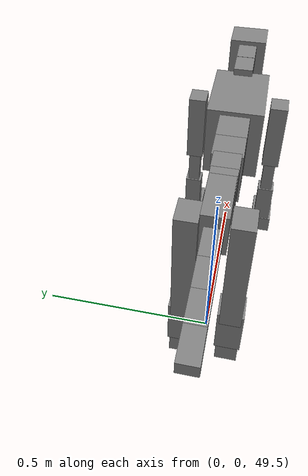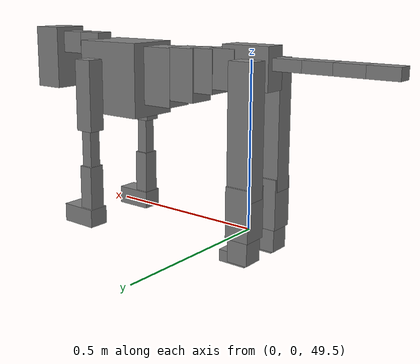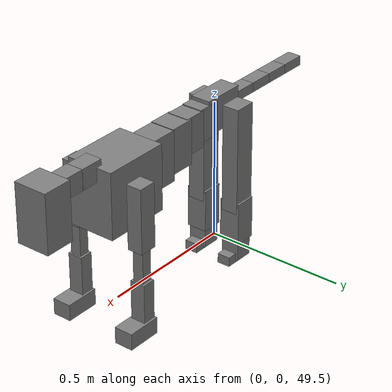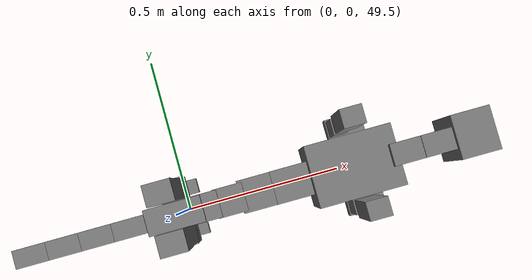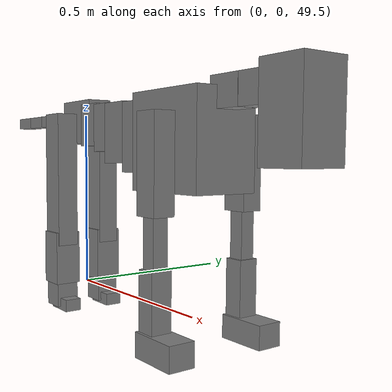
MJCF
<mujoco model="dog">

    <default>
        <joint armature="0.02" stiffness="1" damping="0.2" limited="true"/>
        <geom condim="3" friction="1 0.05 0.05" margin="0.01"/>
        <motor ctrllimited="true" ctrlrange="-1.0 1.0" forcelimited="true" gear="50"/>
    </default>

    <compiler inertiafromgeom="true" angle="radian"/>

    <option timestep="0.016" iterations="50" tolerance="1e-10" solver="Newton" jacobian="dense" cone="pyramidal"/>

    <size nconmax="20000" njmax="60000" nstack="5000000"/>
    <visual>
        <map force="0.1" zfar="30"/>
        <rgba haze="0.15 0.25 0.35 1"/>
        <quality shadowsize="2048"/>
        <global offwidth="800" offheight="800"/>
    </visual>

    <asset>
        <texture type="skybox" builtin="gradient" rgb1="0.3 0.5 0.7" rgb2="0 0 0" width="512" height="512"/>
        <texture name="texplane" type="2d" builtin="checker" rgb1=".2 .3 .4" rgb2=".1 0.15 0.2" width="512" height="512"
                 mark="cross" markrgb=".8 .8 .8"/>
        <texture name="texgeom" type="cube" builtin="flat" mark="cross" width="127" height="1278" rgb1="0.8 0.6 0.4"
                 rgb2="0.8 0.6 0.4" markrgb="1 1 1" random="0.01"/>

        <material name="matplane" reflectance="0.3" texture="texplane" texrepeat="1 1" texuniform="true"/>
        <material name="matgeom" texture="texgeom" texuniform="true" rgba="0.8 0.6 .4 1"/>
    </asset>

    <worldbody>
        <geom name="floor" pos="0 0 0" size="0 0 .25" type="plane" material="matplane" condim="3"/>

        <light directional="false" diffuse=".2 .2 .2" specular="0 0 0" pos="0 0 5" dir="0 0 -1" castshadow="false"/>
        <light mode="targetbodycom" target="torso" directional="false" diffuse=".8 .8 .8" specular="0.3 0.3 0.3"
               pos="0 0 4.0" dir="0 0 -1"/>

        <body name="root" pos="0 0 50">
            <freejoint name="root_1"/>
            <geom type="box" pos="0 0 -0.02" size="0.0774  0.0358  0.063" density="2030"/>

            <body name="spine1" pos="0.054 0 0">
                <joint name="spine1_y" axis="0 1 0" range="0 0.7" limited="true"/>
                <geom type="box" pos="0.02375 0 -0.03" size="0.04375  0.0375  0.05985" density="2030"/>

                <body name="spine2" pos="0.0612 0 0">
                    <joint name="spine2_y" axis="0 1 0" range="-0.15 0.15" limited="true"/>
                    <geom type="box" pos="0.03555  0  -0.04" size="0.04055  0.039  0.06615" density="2030"/>

                    <body name="spine3" pos="0.0730 0 0">
                        <joint name="spine3_y" axis="0 1 0" range="-0.15 0.15" limited="true"/>
                        <geom type="box" pos="0.03555  0  -0.057" size="0.04555  0.0445  0.081" density="2030"/>

                        <body name="spine4" pos="0.0780 0 0">
                            <joint name="spine4_y" axis="0 1 0" range="-0.15 0.15" limited="true"/>
                            <geom type="box" pos="0.05265  0  -0.07" size="0.05265  0.045  0.09135" density="2030"/>

                            <body name="torso" pos="0.1082 0 0">
                                <joint name="torso_y" axis="0 1 0" range="-0.15 0.15" limited="true"/>
                                <geom type="box" pos="0.11925  0  -0.085" size="0.11925  0.085  0.11745"
                                      density="2030"/>

                                <body name="neck1" pos="0.2160  0   0.0180">
                                    <joint name="neck1_y" axis="0 1 0" range="-1.2  -1" limited="true"/>
                                    <geom type="box" pos="0.0423  0  0" size="0.0423  0.03  0.036" density="2325"/>

                                    <body name="neck2" pos="0.0853  0  0">
                                        <joint name="neck2_y" axis="0 1 0" range="0.1  0" limited="true"/>
                                        <geom type="box" pos="0.0423  0  0" size="0.0423  0.03  0.036" density="2325"/>

                                        <body name="head" pos="0.0853  0  0">
                                            <joint name="head_y" axis="0 1 0" range="-0.3  -0.2" limited="true"/>
                                            <geom type="box" pos="0.0531  0  -0.055" size="0.0531  0.06  0.1044"
                                                  density="4030"/>

                                        </body>
                                    </body>
                                </body>

                                <body name="front_shoulder" pos="0.156  0   -0.0480">
                                    <joint name="front_shoulder_y" axis="0 1 0" range="-1 1.5" limited="true"/>
                                    <geom type="box" pos="0 0.13 -0.0877" size="0.0320  0.0274  0.1144" density="1158"/>
                                    <geom type="box" pos="0 -0.13 -0.0877" size="0.0320  0.0274  0.1144"
                                          density="1158"/>

                                    <body name="front_elbow" pos="0  0  -0.1755">
                                        <joint name="front_elbow_y" axis="0 1 0" range="-2 0" limited="true"/>
                                        <geom type="box" pos="0 0.13 -0.0781" size="0.0189  0.0194  0.0781"
                                              density="1081"/>
                                        <geom type="box" pos="0 -0.13 -0.0781" size="0.0189  0.0194  0.0781"
                                              density="1081"/>

                                        <body name="front_wrist" pos="0  0  -0.1562">
                                            <joint name="front_wrist_y" axis="0 1 0" range="-0.2 0" limited="true"/>
                                            <geom type="box" pos="0 0.13 -0.0709" size="0.0240  0.0267  0.0840"
                                                  density="1664"/>
                                            <geom type="box" pos="0 -0.13 -0.0709" size="0.0240  0.0267  0.0840"
                                                  density="1664"/>

                                            <body name="front_finger_end" pos="0  0  -0.1418">
                                                <joint name="front_finger_y" axis="0 1 0" range="-0.4 1"
                                                       limited="true"/>
                                                <geom type="box" pos="0.0337  0.13  -0.0145"
                                                      size="0.0618  0.0337  0.0295" density="1515"/>
                                                <geom type="box" pos="0.0337  -0.13  -0.0145"
                                                      size="0.0618  0.0337  0.0295" density="1515"/>

                                            </body>

                                        </body>
                                    </body>
                                </body>

                            </body>
                        </body>
                    </body>
                </body>
            </body>

            <body name="back_hip" pos="-0.03 0 -0.018">
                <joint name="back_hip_y" axis="0 1 0" range="-1.5 0.3" limited="true"/>
                <geom type="box" pos="0 0.07 -0.1719" size="0.0396  0.0311  0.1947" density="1154"/>
                <geom type="box" pos="0 -0.07 -0.1719" size="0.0396  0.0311  0.1947" density="1154"/>

                <body name="back_knee" pos="0  0  -0.3439">
                    <joint name="back_knee_y" axis="0 1 0" range="0 2.8" limited="true"/>
                    <geom type="box" pos="0 0.07 -0.0613" size="0.0383  0.0378  0.0768" density="1227"/>
                    <geom type="box" pos="0 -0.07 -0.0613" size="0.0383  0.0378  0.0768" density="1227"/>

                    <body name="back_ankle" pos="0  0  -0.1225">
                        <joint name="back_ankle_y" axis="0 1 0" range="-2.2 0" limited="true"/>
                        <geom type="box" pos="0 0.07 -0.0369" size="0.0329  0.0329  0.0481" density="1284"/>
                        <geom type="box" pos="0 -0.07 -0.0369" size="0.0329  0.0329  0.0481" density="1284"/>

                        <body name="back_toe_end" pos="0  0  -0.0737">
                            <joint name="back_toe_y" axis="0 1 0" range="-0.4 1" limited="true"/>
                            <geom type="box" pos="0.0241  0.07  -0.0025" size="0.0442  0.0241  0.0175" density="1515"/>
                            <geom type="box" pos="0.0241  -0.07  -0.0025" size="0.0442  0.0241  0.0175" density="1515"/>

                        </body>
                    </body>
                </body>
            </body>

            <body name="tail1" pos="-0.074 0 -0.006">
                <joint name="tail1_y" axis="0 1 0" range="-0.2 0.2" limited="true"/>
                <geom type="box" pos="-0.0536  0  0" size="0.045  0.025  0.0175" density="1587"/>

                <body name="tail2" pos="-0.09 0 0">
                    <joint name="tail2_y" axis="0 1 0" range="-0.2 0.2" limited="true"/>
                    <geom type="box" pos="-0.0536  0  0" size="0.045  0.025  0.0175" density="1587"/>

                    <body name="tail3" pos="-0.09 0 0">
                        <joint name="tail3_y" axis="0 1 0" range="-0.2 0.2" limited="true"/>
                        <geom type="box" pos="-0.0536  0  0" size="0.045  0.025  0.0175" density="1587"/>

                        <body name="tail4" pos="-0.09 0 0">
                            <joint name="tail4_y" axis="0 1 0" range="-0.2 0.2" limited="true"/>
                            <geom type="box" pos="-0.0536  0  0" size="0.045  0.025  0.0175" density="1587"/>

                        </body>
                    </body>
                </body>
            </body>
        </body>
    </worldbody>

    <actuator>
        <motor joint="spine1_y" forcerange="-150 150     "/>
        <motor joint="spine2_y" forcerange="-150 150     "/>
        <motor joint="spine3_y" forcerange="-150 150     "/>
        <motor joint="spine4_y" forcerange="-150 150     "/>
        <motor joint="torso_y" forcerange="-150 150     "/>
        <motor joint="neck1_y" forcerange="-100 100       "/>
        <motor joint="neck2_y" forcerange="-100 100       "/>
        <motor joint="head_y" forcerange="-150 150       "/>
        <motor joint="front_shoulder_y" forcerange="-135.26 147.24"/>
        <motor joint="front_elbow_y" forcerange="-113.13 127.70"/>
        <motor joint="front_wrist_y" forcerange="-115.64 97.69"/>
        <motor joint="front_finger_y" forcerange="-76.18 63.65"/>
        <motor joint="back_hip_y" forcerange="-302.14 312.28"/>
        <motor joint="back_knee_y" forcerange="-387.91 361.31"/>
        <motor joint="back_angle_y" forcerange="-207.40 218.94"/>
        <motor joint="back_toe_y" forcerange="-29.85 83.18"/>
        <motor joint="tail1_y" forcerange="-50 50     "/>
        <motor joint="tail2_y" forcerange="-50 50     "/>
        <motor joint="tail3_y" forcerange="-50 50     "/>
        <motor joint="tail4_y" forcerange="-50 50     "/>
    </actuator>
</mujoco>
